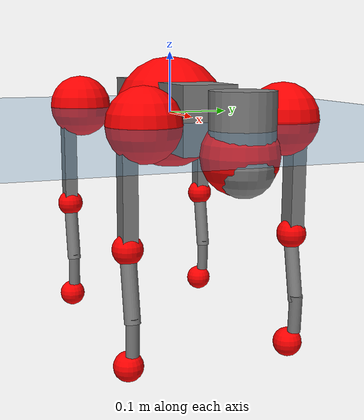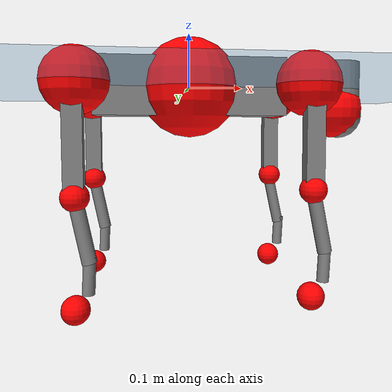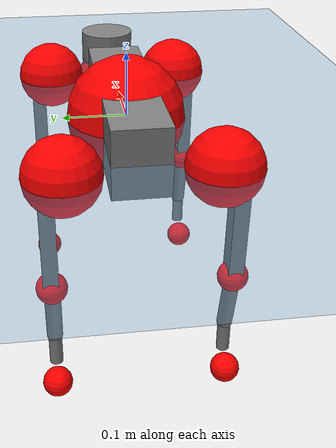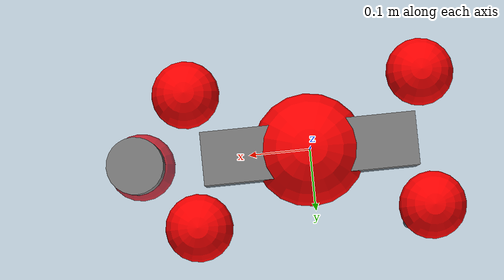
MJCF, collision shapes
<mujoco model="go2">
  <compiler angle="radian" assetdir="assets" balanceinertia="true" inertiafromgeom="false"/>

  <option timestep="0.005" density="1.2" viscosity="2e-05"/>

  <size nkey="1"/>

  <visual>
    <quality shadowsize="8192"/>
    <map shadowclip="0.5"/>
  </visual>

  <default>
    <default class="/">
      <geom contype="0" conaffinity="0" group="1" solref="-1000 -80"/>
      <site size="0.01 0.005 0.005" group="5"/>
      <general forcelimited="true" biastype="affine" gainprm="20" biasprm="0 -20 -0.5"/>
      <default class="go2">
        <joint armature="0.01" damping="0.01" frictionloss="0.2"/>
        <geom condim="1" margin="0.001"/>
        <default class="visual">
          <geom type="mesh" group="2"/>
        </default>
        <default class="collision">
          <geom group="3"/>
          <default class="foot">
            <geom size="0.022 0 0" condim="6" priority="1" friction="0.8 0.02 0.01" solimp="0.015 1 0.022"/>
          </default>
        </default>
        <default class="reward_collision_sphere">
          <geom group="5" rgba="1 0 0 1"/>
        </default>
      </default>
    </default>
  </default>

  <asset>
    <texture type="skybox" colorspace="auto" name="//unnamed_texture_0" builtin="gradient" rgb1="0.95 0.95 0.95" rgb2="0.95 0.95 0.95" width="100" height="600"/>
    <texture type="2d" colorspace="auto" name="texplane" builtin="checker" rgb1="0.345 0.575 0.748" rgb2="0.345 0.575 0.748" markrgb="1 1 1" width="512" height="512"/>
    <material name="MatPlane" class="/" texture="texplane" texuniform="true" texrepeat="2 2" specular="0.9"/>
    <material name="metal" class="/" rgba="0.9 0.95 0.95 1"/>
    <material name="black" class="/" rgba="0 0 0 1"/>
    <material name="white" class="/"/>
    <material name="gray" class="/" rgba="0.671705 0.692426 0.77427 1"/>
    <mesh name="base_0" class="/" file="base_0.obj"/>
    <mesh name="base_1" class="/" file="base_1.obj"/>
    <mesh name="base_2" class="/" file="base_2.obj"/>
    <mesh name="base_3" class="/" file="base_3.obj"/>
    <mesh name="base_4" class="/" file="base_4.obj"/>
    <mesh name="hip_0" class="/" file="hip_0.obj"/>
    <mesh name="hip_1" class="/" file="hip_1.obj"/>
    <mesh name="thigh_0" class="/" file="thigh_0.obj"/>
    <mesh name="thigh_1" class="/" file="thigh_1.obj"/>
    <mesh name="thigh_mirror_0" class="/" file="thigh_mirror_0.obj"/>
    <mesh name="thigh_mirror_1" class="/" file="thigh_mirror_1.obj"/>
    <mesh name="calf_0" class="/" file="calf_0.obj"/>
    <mesh name="calf_1" class="/" file="calf_1.obj"/>
    <mesh name="calf_mirror_0" class="/" file="calf_mirror_0.obj"/>
    <mesh name="calf_mirror_1" class="/" file="calf_mirror_1.obj"/>
    <mesh name="foot" class="/" file="foot.obj"/>
  </asset>

  <worldbody>
    <geom name="floor" class="/" size="100 100 0.125" type="plane" group="0" material="MatPlane"/>
    <light name="toplight_shadow" class="/" pos="0 0 5" dir="0.0990148 0.0990148 -0.990148" type="directional" ambient="0.04 0.04 0.04" diffuse="0.55 0.55 0.55" specular="0.12 0.12 0.12"/>
    <light name="toplight_fill" class="/" pos="0 0 5" dir="0.0990148 0.0990148 -0.990148" type="directional" castshadow="false" ambient="0.04 0.04 0.04" diffuse="0.3 0.3 0.3" specular="0.08 0.08 0.08"/>
    <body name="trunk" childclass="go2" pos="0.00108082 0.000255474 0.000836695" quat="1 -0.000189165 -0.000194845 2.17406e-05">
      <inertial pos="0.0200056 -0.00103855 -0.00483024" quat="0.000168274 0.712437 -0.00369364 0.701726" mass="5.39298" diaginertia="0.102729 0.0728691 0.0103882"/>
      <joint name="//unnamed_joint_0" type="free" armature="0" damping="0" frictionloss="0"/>
      <geom name="//unnamed_geom_1" class="visual" material="black" mesh="base_0"/>
      <geom name="//unnamed_geom_2" class="visual" material="black" mesh="base_1"/>
      <geom name="//unnamed_geom_3" class="visual" material="black" mesh="base_2"/>
      <geom name="//unnamed_geom_4" class="visual" material="white" mesh="base_3"/>
      <geom name="//unnamed_geom_5" class="visual" material="gray" mesh="base_4"/>
      <geom name="trunk_1" class="collision" size="0.174359 0.0433347 0.0528359" type="box"/>
      <geom name="trunk_2" class="collision" size="0.0463473 0.0417126" pos="0.283005 0 0.0084431" type="cylinder"/>
      <geom name="trunk_3" class="collision" size="0.0435665" pos="0.290949 0 -0.0506586"/>
      <geom name="//unnamed_geom_9" class="reward_collision_sphere" size="0.0926946"/>
      <geom name="//unnamed_geom_10" class="reward_collision_sphere" size="0.0556168" pos="0.27804 0 -0.037994"/>
      <site name="imu" pos="-0.0245938 -0.00458129 0.0375924" size="0.00926946"/>
      <camera name="track" pos="0 -1.88706 0" quat="0.707107 0.707107 0 0" mode="trackcom"/>
      <camera name="ego_camera" pos="0.309816 0 0.037994" quat="-0.5 -0.5 0.5 0.5"/>
      <body name="FL_hip" pos="0.191249 0.0434266 0.00116118" quat="1 -0.000182297 0.000111533 0.00034179">
        <inertial pos="-0.00494478 0.00263824 -0.000764296" quat="0.497034 0.49925 0.505406 0.498268" mass="0.548623" diaginertia="0.000870153 0.000443057 0.000205797"/>
        <joint name="FL_hip_joint" pos="0 0 0" axis="0.999937 0.0029033 0.0108248" stiffness="0.0048581" range="-1.03047 1.046" armature="0.00923187" damping="0" frictionloss="0.184417"/>
        <geom name="//unnamed_geom_11" class="visual" material="metal" mesh="hip_0"/>
        <geom name="//unnamed_geom_12" class="visual" material="gray" mesh="hip_1"/>
        <geom name="//unnamed_geom_13" class="collision" size="0.0426395 0.0185389" pos="0 0.0754823 0" quat="0.707107 0.707107 0 0" type="cylinder"/>
        <geom name="//unnamed_geom_14" class="reward_collision_sphere" size="0.0556168" pos="0 0.066047 0"/>
        <body name="FL_thigh" pos="-0.00129468 0.0900943 0.00153034" quat="1 -3.43821e-05 -4.23428e-05 -2.90046e-05">
          <inertial pos="-0.00451533 -0.0200871 -0.0279179" quat="0.829624 0.0845788 -0.0202185 0.551508" mass="0.927314" diaginertia="0.00572059 0.00438527 0.000385431"/>
          <joint name="FL_thigh_joint" pos="0 0 0" axis="0.00286459 0.999984 0.00490657" range="-1.58593 3.49251" armature="0.00943891" damping="0.00528122" frictionloss="0.188578"/>
          <geom name="//unnamed_geom_15" class="visual" material="metal" mesh="thigh_0"/>
          <geom name="//unnamed_geom_16" class="visual" material="gray" mesh="thigh_1"/>
          <geom name="//unnamed_geom_17" class="collision" size="0.0987198 0.0113551 0.0157581" pos="0 0 -0.0899191" quat="0.707107 0 0.707107 0" type="box"/>
          <body name="FL_calf" pos="-0.00032878 -0.00141402 -0.180216" quat="1 0.000417104 -0.000130035 -5.84637e-05">
            <inertial pos="0.006469 -0.000389361 -0.119551" quat="0.710573 0.00426535 -0.00425308 0.703597" mass="0.192367" diaginertia="0.0014766 0.00109953 2.3137e-05"/>
            <joint name="FL_calf_joint" pos="0 0 0" axis="-0.00031946 0.999997 0.00225373" range="-2.73544 -0.841509" armature="0.00889059" damping="0.00282087" frictionloss="0.177053"/>
            <geom name="//unnamed_geom_18" class="visual" material="gray" mesh="calf_0"/>
            <geom name="//unnamed_geom_19" class="visual" material="black" mesh="calf_1"/>
            <geom name="FL_calf0" class="collision" size="0.0111234 0.0556168" pos="0.007944 0 -0.0506586" quat="0.994493 0 -0.104807 0" type="cylinder"/>
            <geom name="//unnamed_geom_21" class="collision" size="0.0101964 0.0301257" pos="0.01986 0 -0.124958" quat="0.999688 0 0.0249974 0" type="cylinder"/>
            <geom name="//unnamed_geom_22" class="visual" pos="0 0 -0.179838" quat="1 0 0 0" material="black" mesh="foot"/>
            <geom name="FL_foot" class="foot" size="0.0169426" pos="-0.001986 0 -0.179838"/>
            <geom name="//unnamed_geom_24" class="reward_collision_sphere" size="0.0231737"/>
            <geom name="//unnamed_geom_25" class="reward_collision_sphere" size="0.0231737" pos="-0.001986 0 -0.179838"/>
            <site name="FL_foot" class="foot" pos="-0.001986 0 -0.179838" size="0.00926946"/>
          </body>
        </body>
      </body>
      <body name="FR_hip" pos="0.193174 -0.0433399 -0.000733983" quat="1 -4.70676e-05 0.000195638 -4.63503e-05">
        <inertial pos="-0.00609986 -0.00191663 -0.00023782" quat="0.498167 0.505388 0.499087 0.497319" mass="0.540919" diaginertia="0.000868354 0.000450933 0.000210379"/>
        <joint name="FR_hip_joint" pos="0 0 0" axis="0.999999 0.00099707 0.00135095" stiffness="0.00481655" range="-1.05632 1.05007" armature="0.00927989" damping="0.0142799" frictionloss="0.185417"/>
        <geom name="//unnamed_geom_26" class="visual" pos="0 8.64343e-10 3.70735e-08" quat="4.63268e-05 1 0 0" material="metal" mesh="hip_0"/>
        <geom name="//unnamed_geom_27" class="visual" pos="0 1.4012e-09 -9.16968e-08" quat="4.63268e-05 1 0 0" material="gray" mesh="hip_1"/>
        <geom name="//unnamed_geom_28" class="collision" size="0.0426395 0.0185389" pos="0 -0.0754823 0" quat="0.707107 0.707107 0 0" type="cylinder"/>
        <geom name="//unnamed_geom_29" class="reward_collision_sphere" size="0.0556168" pos="0 -0.066047 0"/>
        <body name="FR_thigh" pos="0.000528218 -0.0914629 0.000932295" quat="1 -0.000135117 -2.18469e-05 -9.86271e-05">
          <inertial pos="-0.00458233 0.0215382 -0.0273842" quat="0.552358 -0.0203109 0.0885373 0.828643" mass="0.917557" diaginertia="0.00581196 0.00442476 0.000380713"/>
          <joint name="FR_thigh_joint" pos="0 0 0" axis="0.00422999 -0.999991 0.00025639" stiffness="0.00205977" range="-3.49881 1.56514" armature="0.00925029" damping="0.0117465" frictionloss="0.178425"/>
          <geom name="//unnamed_geom_30" class="visual" material="metal" mesh="thigh_mirror_0"/>
          <geom name="//unnamed_geom_31" class="visual" material="gray" mesh="thigh_mirror_1"/>
          <geom name="//unnamed_geom_32" class="collision" size="0.0987198 0.0113551 0.0157581" pos="0 0 -0.0899191" quat="0.707107 0 0.707107 0" type="box"/>
          <body name="FR_calf" pos="-6.41868e-05 -0.000546992 -0.178749" quat="1 7.04018e-06 -9.50488e-06 -1.86937e-05">
            <inertial pos="0.00632495 0.000487688 -0.119449" quat="0.702956 -0.00325951 0.00183228 0.711223" mass="0.192706" diaginertia="0.00143537 0.00109305 2.29399e-05"/>
            <joint name="FR_calf_joint" pos="0 0 0" axis="-0.00354705 -0.999993 0.000747986" range="0.831502 2.71057" armature="0.00941198" damping="0.00709864" frictionloss="0.191223"/>
            <geom name="//unnamed_geom_33" class="visual" material="gray" mesh="calf_mirror_0"/>
            <geom name="//unnamed_geom_34" class="visual" material="black" mesh="calf_mirror_1"/>
            <geom name="FR_calf0" class="collision" size="0.0120503 0.0556168" pos="0.00993 0 -0.0506586" quat="0.995004 0 -0.0998334 0" type="cylinder"/>
            <geom name="//unnamed_geom_36" class="collision" size="0.0101964 0.0301257" pos="0.01986 0 -0.124958" quat="0.999688 0 0.0249974 0" type="cylinder"/>
            <geom name="//unnamed_geom_37" class="visual" pos="0 0 -0.179838" quat="1 0 0 0" material="black" mesh="foot"/>
            <geom name="FR_foot" class="foot" size="0.0227521" pos="-0.001986 0 -0.179838"/>
            <geom name="//unnamed_geom_39" class="reward_collision_sphere" size="0.0231737"/>
            <geom name="//unnamed_geom_40" class="reward_collision_sphere" size="0.0231737" pos="-0.001986 0 -0.179838"/>
            <site name="FR_foot" class="foot" pos="-0.001986 0 -0.179838" size="0.00926946"/>
          </body>
        </body>
      </body>
      <body name="RL_hip" pos="-0.191713 0.0435666 0.000184618" quat="1 -0.000120743 7.59872e-06 -1.32486e-05">
        <inertial pos="0.00498467 0.00297646 0.000592446" quat="0.503307 0.494547 0.500596 0.501506" mass="0.547504" diaginertia="0.000857384 0.000448479 0.000208187"/>
        <joint name="RL_hip_joint" pos="0 0 0" axis="-0.999802 -0.0144996 -0.0136195" range="-1.05278 1.06419" armature="0.00933212" damping="0.0169674" frictionloss="0.187877"/>
        <geom name="//unnamed_geom_41" class="visual" pos="-1.29532e-09 0 -2.53912e-07" quat="4.63268e-05 0 1 0" material="metal" mesh="hip_0"/>
        <geom name="//unnamed_geom_42" class="visual" pos="-2.09987e-09 0 -2.25184e-07" quat="4.63268e-05 0 1 0" material="gray" mesh="hip_1"/>
        <geom name="//unnamed_geom_43" class="collision" size="0.0426395 0.0185389" pos="0 0.0754823 0" quat="0.707107 0.707107 0 0" type="cylinder"/>
        <geom name="//unnamed_geom_44" class="reward_collision_sphere" size="0.0556168" pos="0 0.066047 0"/>
        <body name="RL_thigh" pos="-8.08495e-05 0.0896911 -6.65122e-05" quat="1 -8.14508e-05 -0.000103846 1.9693e-05">
          <inertial pos="-0.00363699 -0.0205928 -0.0272129" quat="0.830225 0.0838786 -0.0211293 0.550676" mass="0.928281" diaginertia="0.00573628 0.00440382 0.000374146"/>
          <joint name="RL_thigh_joint" pos="0 0 0" axis="-0.00192841 0.999998 -0.000784138" stiffness="0.000544006" range="-0.527194 4.53671" armature="0.00903667" damping="0.0128214" frictionloss="0.185794"/>
          <geom name="//unnamed_geom_45" class="visual" material="metal" mesh="thigh_0"/>
          <geom name="//unnamed_geom_46" class="visual" material="gray" mesh="thigh_1"/>
          <geom name="//unnamed_geom_47" class="collision" size="0.0987198 0.0113551 0.0157581" pos="0 0 -0.0899191" quat="0.707107 0 0.707107 0" type="box"/>
          <body name="RL_calf" pos="0.000182206 -0.000915176 -0.180683" quat="1 -0.000267739 0.000165717 -1.98009e-05">
            <inertial pos="0.00655272 0.000514667 -0.119572" quat="0.711995 0.000680654 -0.000440721 0.702184" mass="0.191565" diaginertia="0.00145092 0.001087 2.24541e-05"/>
            <joint name="RL_calf_joint" pos="0 0 0" axis="-0.0081905 0.999966 -0.000612876" range="-2.72362 -0.851868" armature="0.0088683" damping="0.00764313" frictionloss="0.193266"/>
            <geom name="//unnamed_geom_48" class="visual" material="gray" mesh="calf_0"/>
            <geom name="//unnamed_geom_49" class="visual" material="black" mesh="calf_1"/>
            <geom name="RL_calf0" class="collision" size="0.0120503 0.0556168" pos="0.00993 0 -0.0506586" quat="0.995004 0 -0.0998334 0" type="cylinder"/>
            <geom name="//unnamed_geom_51" class="collision" size="0.0101964 0.0301257" pos="0.01986 0 -0.124958" quat="0.999688 0 0.0249974 0" type="cylinder"/>
            <geom name="//unnamed_geom_52" class="visual" pos="0 0 -0.179838" quat="1 0 0 0" material="black" mesh="foot"/>
            <geom name="RL_foot" class="foot" size="0.0175353" pos="-0.001986 0 -0.179838"/>
            <geom name="//unnamed_geom_54" class="reward_collision_sphere" size="0.0231737"/>
            <geom name="//unnamed_geom_55" class="reward_collision_sphere" size="0.0231737" pos="-0.001986 0 -0.179838"/>
            <site name="RL_foot" class="foot" pos="-0.001986 0 -0.179838" size="0.00926946"/>
          </body>
        </body>
      </body>
      <body name="RR_hip" pos="-0.192457 -0.0433182 -0.000270455" quat="1 -0.00021719 -0.00043549 -0.00023902">
        <inertial pos="0.00599126 -0.00238548 -0.000645899" quat="0.499489 0.495031 0.497401 0.507983" mass="0.53858" diaginertia="0.000850796 0.000445996 0.000205895"/>
        <joint name="RR_hip_joint" pos="0 0 0" axis="-0.999983 0.00421813 0.00407874" range="-1.05708 1.05498" armature="0.00966677" damping="0.00758198" frictionloss="0.190004"/>
        <geom name="//unnamed_geom_56" class="visual" pos="1.29361e-09 8.64343e-10 -2.90986e-07" quat="2.14617e-09 4.63268e-05 4.63268e-05 -1" material="metal" mesh="hip_0"/>
        <geom name="//unnamed_geom_57" class="visual" pos="2.1041e-09 1.4012e-09 -1.33487e-07" quat="2.14617e-09 4.63268e-05 4.63268e-05 -1" material="gray" mesh="hip_1"/>
        <geom name="//unnamed_geom_58" class="collision" size="0.0426395 0.0185389" pos="0 -0.0754823 0" quat="0.707107 0.707107 0 0" type="cylinder"/>
        <geom name="//unnamed_geom_59" class="reward_collision_sphere" size="0.0556168" pos="0 -0.066047 0"/>
        <body name="RR_thigh" pos="-0.000186847 -0.0905945 -0.00256977" quat="1 -6.69657e-06 3.37184e-06 6.9446e-06">
          <inertial pos="-0.00394092 0.0211646 -0.027704" quat="0.552216 -0.0203831 0.0840144 0.829207" mass="0.917169" diaginertia="0.00571107 0.00432585 0.00037641"/>
          <joint name="RR_thigh_joint" pos="0 0 0" axis="0.00366273 -0.999985 0.00399774" range="-4.5378 0.527264" armature="0.00925508" damping="0.0134929" frictionloss="0.190006"/>
          <geom name="//unnamed_geom_60" class="visual" material="metal" mesh="thigh_mirror_0"/>
          <geom name="//unnamed_geom_61" class="visual" material="gray" mesh="thigh_mirror_1"/>
          <geom name="//unnamed_geom_62" class="collision" size="0.0987198 0.0113551 0.0157581" pos="0 0 -0.0899191" quat="0.707107 0 0.707107 0" type="box"/>
          <body name="RR_calf" pos="0.000738754 0.000117483 -0.181145" quat="1 -0.000216627 -2.03284e-05 -2.3625e-05">
            <inertial pos="0.00661009 0.000961925 -0.119699" quat="0.70368 -0.00486363 -0.0030175 0.710494" mass="0.193048" diaginertia="0.00143173 0.00109533 2.27814e-05"/>
            <joint name="RR_calf_joint" pos="0 0 0" axis="0.00597954 -0.999982 -6.21663e-06" range="0.834325 2.72341" armature="0.00917535" damping="0.0108414" frictionloss="0.183988"/>
            <geom name="//unnamed_geom_63" class="visual" material="gray" mesh="calf_mirror_0"/>
            <geom name="//unnamed_geom_64" class="visual" material="black" mesh="calf_mirror_1"/>
            <geom name="RR_calf0" class="collision" size="0.0120503 0.0556168" pos="0.00993 0 -0.0506586" quat="0.995004 0 -0.0998334 0" type="cylinder"/>
            <geom name="//unnamed_geom_66" class="collision" size="0.0101964 0.0301257" pos="0.01986 0 -0.124958" quat="0.999688 0 0.0249974 0" type="cylinder"/>
            <geom name="//unnamed_geom_67" class="visual" pos="0 0 -0.179838" quat="1 0 0 0" material="black" mesh="foot"/>
            <geom name="RR_foot" class="foot" size="0.0217643" pos="-0.001986 0 -0.179838"/>
            <geom name="//unnamed_geom_69" class="reward_collision_sphere" size="0.0231737"/>
            <geom name="//unnamed_geom_70" class="reward_collision_sphere" size="0.0231737" pos="-0.001986 0 -0.179838"/>
            <site name="RR_foot" class="foot" pos="-0.001986 0 -0.179838" size="0.00926946"/>
          </body>
        </body>
      </body>
    </body>
  </worldbody>

  <contact>
    <pair class="/" geom1="floor" geom2="FL_foot" name="//unnamed_contact_0"/>
    <pair class="/" geom1="floor" geom2="FR_foot" name="//unnamed_contact_1"/>
    <pair class="/" geom1="floor" geom2="RL_foot" name="//unnamed_contact_2"/>
    <pair class="/" geom1="floor" geom2="RR_foot" name="//unnamed_contact_3"/>
  </contact>

  <actuator>
    <general name="FL_hip" class="/" joint="FL_hip_joint" forcerange="-21.8301 21.8301" gainprm="18.2045" biasprm="0 -18.2045 -0.469382"/>
    <general name="FL_thigh" class="/" joint="FL_thigh_joint" forcerange="-22.734 22.734" gainprm="18.2045" biasprm="0 -18.2045 -0.469382"/>
    <general name="FL_calf" class="/" joint="FL_calf_joint" forcerange="-41.3375 41.3375" gainprm="18.2045" biasprm="0 -18.2045 -0.469382"/>
    <general name="FR_hip" class="/" joint="FR_hip_joint" forcerange="-22.0347 22.0347" gainprm="18.2045" biasprm="0 -18.2045 -0.469382"/>
    <general name="FR_thigh" class="/" joint="FR_thigh_joint" forcerange="-21.182 21.182" gainprm="18.2045" biasprm="0 -18.2045 -0.469382"/>
    <general name="FR_calf" class="/" joint="FR_calf_joint" forcerange="-41.7151 41.7151" gainprm="18.2045" biasprm="0 -18.2045 -0.469382"/>
    <general name="RL_hip" class="/" joint="RL_hip_joint" forcerange="-22.6582 22.6582" gainprm="18.2045" biasprm="0 -18.2045 -0.469382"/>
    <general name="RL_thigh" class="/" joint="RL_thigh_joint" forcerange="-22.6704 22.6704" gainprm="18.2045" biasprm="0 -18.2045 -0.469382"/>
    <general name="RL_calf" class="/" joint="RL_calf_joint" forcerange="-41.1501 41.1501" gainprm="18.2045" biasprm="0 -18.2045 -0.469382"/>
    <general name="RR_hip" class="/" joint="RR_hip_joint" forcerange="-22.5474 22.5474" gainprm="18.2045" biasprm="0 -18.2045 -0.469382"/>
    <general name="RR_thigh" class="/" joint="RR_thigh_joint" forcerange="-22.42 22.42" gainprm="18.2045" biasprm="0 -18.2045 -0.469382"/>
    <general name="RR_calf" class="/" joint="RR_calf_joint" forcerange="-43.1033 43.1033" gainprm="18.2045" biasprm="0 -18.2045 -0.469382"/>
  </actuator>

  <sensor>
    <gyro site="imu" name="imu_angular_velocity"/>
    <velocimeter site="imu" name="imu_linear_velocity"/>
    <framelinvel objtype="site" objname="FL_foot" name="FL_foot_global_linear_velocity"/>
    <framelinvel objtype="site" objname="FR_foot" name="FR_foot_global_linear_velocity"/>
    <framelinvel objtype="site" objname="RL_foot" name="RL_foot_global_linear_velocity"/>
    <framelinvel objtype="site" objname="RR_foot" name="RR_foot_global_linear_velocity"/>
  </sensor>

  <keyframe>
    <key name="home" qpos="0 0 0.325 1 0 0 0 0.1 0.8 -1.5 -0.1 -0.8 1.5 -0.1 0.8 -1.5 0.1 -0.8 1.5"/>
  </keyframe>
</mujoco>
